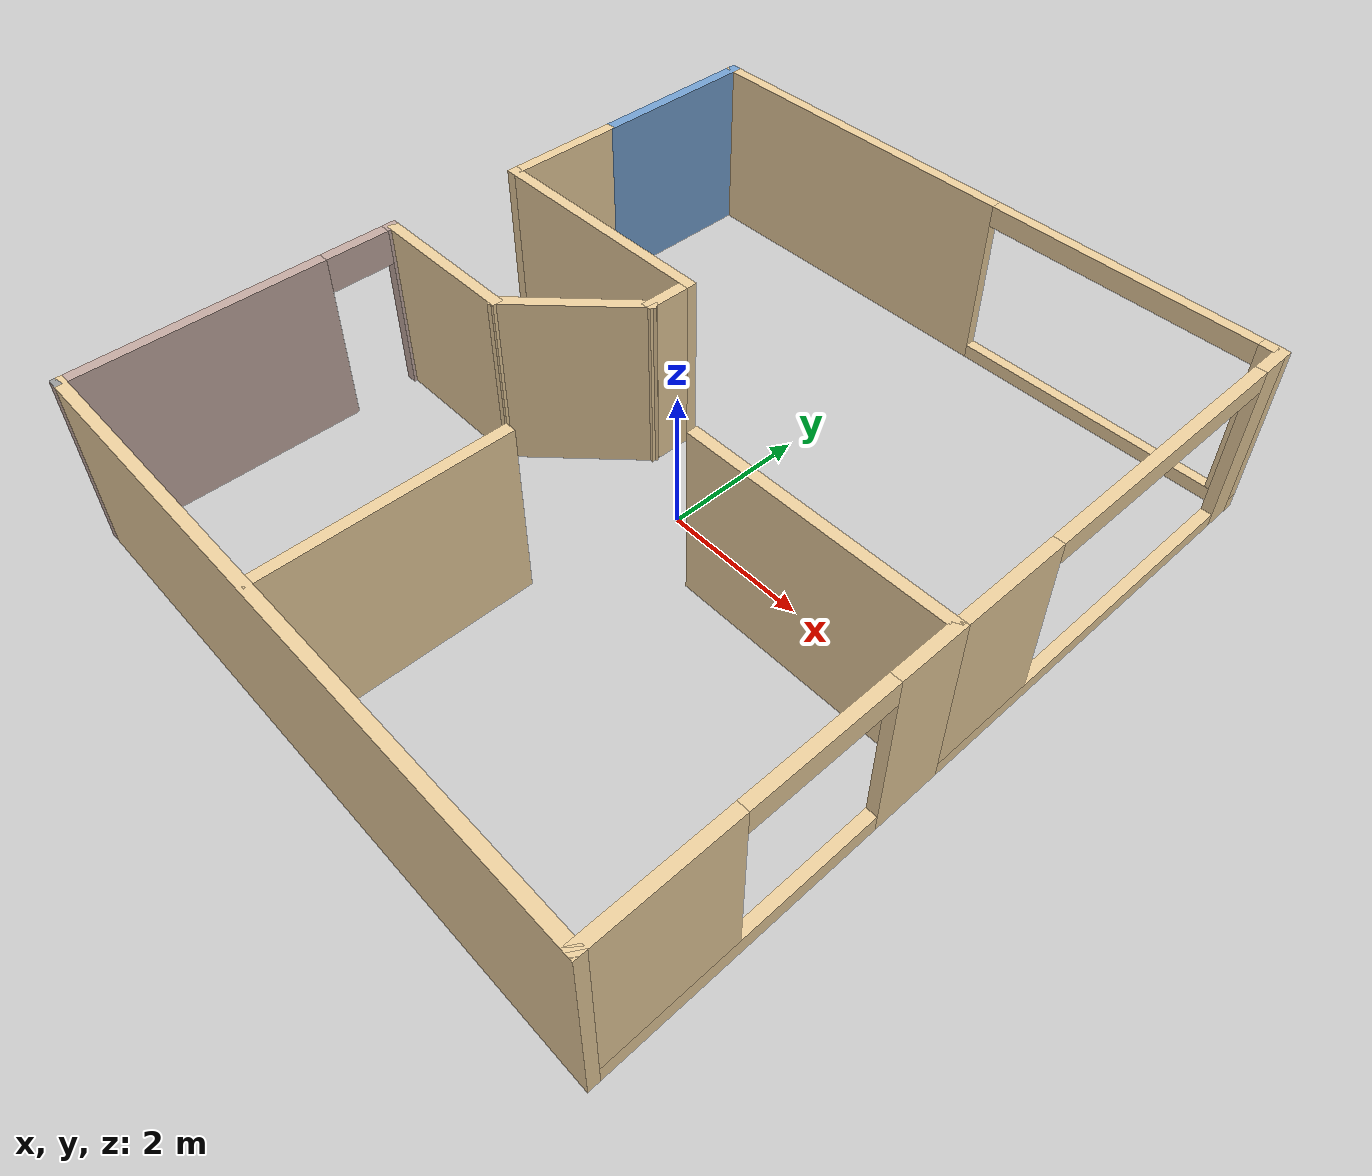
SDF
<?xml version='1.0'?>
<sdf version='1.6'>
  <model name='mybuidling'>
    <link name='Wall_0'>
      <pose frame=''>-3.40404 -0.771022 0 0 -0 0</pose>
      <self_collide>0</self_collide>
      <enable_wind>0</enable_wind>
      <kinematic>0</kinematic>
      <visual name='Wall_0_Visual'>
        <pose frame=''>0 0 1.25 0 -0 0</pose>
        <geometry>
          <box>
            <size>2.25 0.15 2.5</size>
          </box>
        </geometry>
        <material>
          <script>
            <uri>file://media/materials/scripts/gazebo.material</uri>
            <name>Gazebo/Grey</name>
          </script>
          <ambient>0.921569 0.807843 0.615686 1</ambient>
        </material>
        <meta>
          <layer>0</layer>
        </meta>
        <transparency>0</transparency>
        <cast_shadows>1</cast_shadows>
      </visual>
      <collision name='Wall_0_Collision'>
        <laser_retro>0</laser_retro>
        <max_contacts>10</max_contacts>
        <pose frame=''>0 0 1.25 0 -0 0</pose>
        <geometry>
          <box>
            <size>2.25 0.15 2.5</size>
          </box>
        </geometry>
        <surface>
          <friction>
            <ode>
              <mu>1</mu>
              <mu2>1</mu2>
              <fdir1>0 0 0</fdir1>
              <slip1>0</slip1>
              <slip2>0</slip2>
            </ode>
            <torsional>
              <coefficient>1</coefficient>
              <patch_radius>0</patch_radius>
              <surface_radius>0</surface_radius>
              <use_patch_radius>1</use_patch_radius>
              <ode>
                <slip>0</slip>
              </ode>
            </torsional>
          </friction>
          <bounce>
            <restitution_coefficient>0</restitution_coefficient>
            <threshold>1e+06</threshold>
          </bounce>
          <contact>
            <collide_without_contact>0</collide_without_contact>
            <collide_without_contact_bitmask>1</collide_without_contact_bitmask>
            <collide_bitmask>1</collide_bitmask>
            <ode>
              <soft_cfm>0</soft_cfm>
              <soft_erp>0.2</soft_erp>
              <kp>1e+13</kp>
              <kd>1</kd>
              <max_vel>0.01</max_vel>
              <min_depth>0</min_depth>
            </ode>
            <bullet>
              <split_impulse>1</split_impulse>
              <split_impulse_penetration_threshold>-0.01</split_impulse_penetration_threshold>
              <soft_cfm>0</soft_cfm>
              <soft_erp>0.2</soft_erp>
              <kp>1e+13</kp>
              <kd>1</kd>
            </bullet>
          </contact>
        </surface>
      </collision>
    </link>
    <link name='Wall_1'>
      <pose frame=''>-1.69996 -0.116948 0 0 -0 0.785398</pose>
      <self_collide>0</self_collide>
      <enable_wind>0</enable_wind>
      <kinematic>0</kinematic>
      <visual name='Wall_1_Visual'>
        <pose frame=''>0 0 1.25 0 -0 0</pose>
        <geometry>
          <box>
            <size>2 0.15 2.5</size>
          </box>
        </geometry>
        <material>
          <script>
            <uri>file://media/materials/scripts/gazebo.material</uri>
            <name>Gazebo/Grey</name>
          </script>
          <ambient>0.921569 0.807843 0.615686 1</ambient>
        </material>
        <meta>
          <layer>0</layer>
        </meta>
        <transparency>0</transparency>
        <cast_shadows>1</cast_shadows>
      </visual>
      <collision name='Wall_1_Collision'>
        <laser_retro>0</laser_retro>
        <max_contacts>10</max_contacts>
        <pose frame=''>0 0 1.25 0 -0 0</pose>
        <geometry>
          <box>
            <size>2 0.15 2.5</size>
          </box>
        </geometry>
        <surface>
          <friction>
            <ode>
              <mu>1</mu>
              <mu2>1</mu2>
              <fdir1>0 0 0</fdir1>
              <slip1>0</slip1>
              <slip2>0</slip2>
            </ode>
            <torsional>
              <coefficient>1</coefficient>
              <patch_radius>0</patch_radius>
              <surface_radius>0</surface_radius>
              <use_patch_radius>1</use_patch_radius>
              <ode>
                <slip>0</slip>
              </ode>
            </torsional>
          </friction>
          <bounce>
            <restitution_coefficient>0</restitution_coefficient>
            <threshold>1e+06</threshold>
          </bounce>
          <contact>
            <collide_without_contact>0</collide_without_contact>
            <collide_without_contact_bitmask>1</collide_without_contact_bitmask>
            <collide_bitmask>1</collide_bitmask>
            <ode>
              <soft_cfm>0</soft_cfm>
              <soft_erp>0.2</soft_erp>
              <kp>1e+13</kp>
              <kd>1</kd>
              <max_vel>0.01</max_vel>
              <min_depth>0</min_depth>
            </ode>
            <bullet>
              <split_impulse>1</split_impulse>
              <split_impulse_penetration_threshold>-0.01</split_impulse_penetration_threshold>
              <soft_cfm>0</soft_cfm>
              <soft_erp>0.2</soft_erp>
              <kp>1e+13</kp>
              <kd>1</kd>
            </bullet>
          </contact>
        </surface>
      </collision>
    </link>
    <link name='Wall_10'>
      <pose frame=''>4.45396 2.30298 0 0 0 -1.5708</pose>
      <self_collide>0</self_collide>
      <enable_wind>0</enable_wind>
      <kinematic>0</kinematic>
      <visual name='Wall_10_Visual_0'>
        <pose frame=''>-2.70027 0 1.25 0 -0 0</pose>
        <geometry>
          <box>
            <size>0.517468 0.15 2.5</size>
          </box>
        </geometry>
        <material>
          <script>
            <uri>file://media/materials/scripts/gazebo.material</uri>
            <name>Gazebo/Grey</name>
          </script>
          <ambient>0.921569 0.807843 0.615686 1</ambient>
        </material>
        <meta>
          <layer>0</layer>
        </meta>
        <transparency>0</transparency>
        <cast_shadows>1</cast_shadows>
      </visual>
      <visual name='Wall_10_Visual_2'>
        <pose frame=''>2.14373 0 1.35 0 -0 0</pose>
        <geometry>
          <box>
            <size>1.63053 0.15 2.3</size>
          </box>
        </geometry>
        <material>
          <script>
            <uri>file://media/materials/scripts/gazebo.material</uri>
            <name>Gazebo/Grey</name>
          </script>
          <ambient>0.921569 0.807843 0.615686 1</ambient>
        </material>
        <meta>
          <layer>0</layer>
        </meta>
        <transparency>0</transparency>
        <cast_shadows>1</cast_shadows>
      </visual>
      <visual name='Wall_10_Visual_1'>
        <pose frame=''>0.258734 0 0.1 0 -0 0</pose>
        <geometry>
          <box>
            <size>5.40053 0.15 0.2</size>
          </box>
        </geometry>
        <material>
          <script>
            <uri>file://media/materials/scripts/gazebo.material</uri>
            <name>Gazebo/Grey</name>
          </script>
          <ambient>0.921569 0.807843 0.615686 1</ambient>
        </material>
        <meta>
          <layer>0</layer>
        </meta>
        <transparency>0</transparency>
        <cast_shadows>1</cast_shadows>
      </visual>
      <visual name='Wall_10_Visual_3'>
        <pose frame=''>-0.556532 0 2.35 0 -0 0</pose>
        <geometry>
          <box>
            <size>3.77 0.15 0.3</size>
          </box>
        </geometry>
        <material>
          <script>
            <uri>file://media/materials/scripts/gazebo.material</uri>
            <name>Gazebo/Grey</name>
          </script>
          <ambient>0.921569 0.807843 0.615686 1</ambient>
        </material>
        <meta>
          <layer>0</layer>
        </meta>
        <transparency>0</transparency>
        <cast_shadows>1</cast_shadows>
      </visual>
      <collision name='Wall_10_Collision_3'>
        <laser_retro>0</laser_retro>
        <max_contacts>10</max_contacts>
        <pose frame=''>-0.556532 0 2.35 0 -0 0</pose>
        <geometry>
          <box>
            <size>3.77 0.15 0.3</size>
          </box>
        </geometry>
        <surface>
          <friction>
            <ode>
              <mu>1</mu>
              <mu2>1</mu2>
              <fdir1>0 0 0</fdir1>
              <slip1>0</slip1>
              <slip2>0</slip2>
            </ode>
            <torsional>
              <coefficient>1</coefficient>
              <patch_radius>0</patch_radius>
              <surface_radius>0</surface_radius>
              <use_patch_radius>1</use_patch_radius>
              <ode>
                <slip>0</slip>
              </ode>
            </torsional>
          </friction>
          <bounce>
            <restitution_coefficient>0</restitution_coefficient>
            <threshold>1e+06</threshold>
          </bounce>
          <contact>
            <collide_without_contact>0</collide_without_contact>
            <collide_without_contact_bitmask>1</collide_without_contact_bitmask>
            <collide_bitmask>1</collide_bitmask>
            <ode>
              <soft_cfm>0</soft_cfm>
              <soft_erp>0.2</soft_erp>
              <kp>1e+13</kp>
              <kd>1</kd>
              <max_vel>0.01</max_vel>
              <min_depth>0</min_depth>
            </ode>
            <bullet>
              <split_impulse>1</split_impulse>
              <split_impulse_penetration_threshold>-0.01</split_impulse_penetration_threshold>
              <soft_cfm>0</soft_cfm>
              <soft_erp>0.2</soft_erp>
              <kp>1e+13</kp>
              <kd>1</kd>
            </bullet>
          </contact>
        </surface>
      </collision>
      <collision name='Wall_10_Collision_2'>
        <laser_retro>0</laser_retro>
        <max_contacts>10</max_contacts>
        <pose frame=''>2.14373 0 1.35 0 -0 0</pose>
        <geometry>
          <box>
            <size>1.63053 0.15 2.3</size>
          </box>
        </geometry>
        <surface>
          <friction>
            <ode>
              <mu>1</mu>
              <mu2>1</mu2>
              <fdir1>0 0 0</fdir1>
              <slip1>0</slip1>
              <slip2>0</slip2>
            </ode>
            <torsional>
              <coefficient>1</coefficient>
              <patch_radius>0</patch_radius>
              <surface_radius>0</surface_radius>
              <use_patch_radius>1</use_patch_radius>
              <ode>
                <slip>0</slip>
              </ode>
            </torsional>
          </friction>
          <bounce>
            <restitution_coefficient>0</restitution_coefficient>
            <threshold>1e+06</threshold>
          </bounce>
          <contact>
            <collide_without_contact>0</collide_without_contact>
            <collide_without_contact_bitmask>1</collide_without_contact_bitmask>
            <collide_bitmask>1</collide_bitmask>
            <ode>
              <soft_cfm>0</soft_cfm>
              <soft_erp>0.2</soft_erp>
              <kp>1e+13</kp>
              <kd>1</kd>
              <max_vel>0.01</max_vel>
              <min_depth>0</min_depth>
            </ode>
            <bullet>
              <split_impulse>1</split_impulse>
              <split_impulse_penetration_threshold>-0.01</split_impulse_penetration_threshold>
              <soft_cfm>0</soft_cfm>
              <soft_erp>0.2</soft_erp>
              <kp>1e+13</kp>
              <kd>1</kd>
            </bullet>
          </contact>
        </surface>
      </collision>
      <collision name='Wall_10_Collision_1'>
        <laser_retro>0</laser_retro>
        <max_contacts>10</max_contacts>
        <pose frame=''>0.258734 0 0.1 0 -0 0</pose>
        <geometry>
          <box>
            <size>5.40053 0.15 0.2</size>
          </box>
        </geometry>
        <surface>
          <friction>
            <ode>
              <mu>1</mu>
              <mu2>1</mu2>
              <fdir1>0 0 0</fdir1>
              <slip1>0</slip1>
              <slip2>0</slip2>
            </ode>
            <torsional>
              <coefficient>1</coefficient>
              <patch_radius>0</patch_radius>
              <surface_radius>0</surface_radius>
              <use_patch_radius>1</use_patch_radius>
              <ode>
                <slip>0</slip>
              </ode>
            </torsional>
          </friction>
          <bounce>
            <restitution_coefficient>0</restitution_coefficient>
            <threshold>1e+06</threshold>
          </bounce>
          <contact>
            <collide_without_contact>0</collide_without_contact>
            <collide_without_contact_bitmask>1</collide_without_contact_bitmask>
            <collide_bitmask>1</collide_bitmask>
            <ode>
              <soft_cfm>0</soft_cfm>
              <soft_erp>0.2</soft_erp>
              <kp>1e+13</kp>
              <kd>1</kd>
              <max_vel>0.01</max_vel>
              <min_depth>0</min_depth>
            </ode>
            <bullet>
              <split_impulse>1</split_impulse>
              <split_impulse_penetration_threshold>-0.01</split_impulse_penetration_threshold>
              <soft_cfm>0</soft_cfm>
              <soft_erp>0.2</soft_erp>
              <kp>1e+13</kp>
              <kd>1</kd>
            </bullet>
          </contact>
        </surface>
      </collision>
      <collision name='Wall_10_Collision_0'>
        <laser_retro>0</laser_retro>
        <max_contacts>10</max_contacts>
        <pose frame=''>-2.70027 0 1.25 0 -0 0</pose>
        <geometry>
          <box>
            <size>0.517468 0.15 2.5</size>
          </box>
        </geometry>
        <surface>
          <friction>
            <ode>
              <mu>1</mu>
              <mu2>1</mu2>
              <fdir1>0 0 0</fdir1>
              <slip1>0</slip1>
              <slip2>0</slip2>
            </ode>
            <torsional>
              <coefficient>1</coefficient>
              <patch_radius>0</patch_radius>
              <surface_radius>0</surface_radius>
              <use_patch_radius>1</use_patch_radius>
              <ode>
                <slip>0</slip>
              </ode>
            </torsional>
          </friction>
          <bounce>
            <restitution_coefficient>0</restitution_coefficient>
            <threshold>1e+06</threshold>
          </bounce>
          <contact>
            <collide_without_contact>0</collide_without_contact>
            <collide_without_contact_bitmask>1</collide_without_contact_bitmask>
            <collide_bitmask>1</collide_bitmask>
            <ode>
              <soft_cfm>0</soft_cfm>
              <soft_erp>0.2</soft_erp>
              <kp>1e+13</kp>
              <kd>1</kd>
              <max_vel>0.01</max_vel>
              <min_depth>0</min_depth>
            </ode>
            <bullet>
              <split_impulse>1</split_impulse>
              <split_impulse_penetration_threshold>-0.01</split_impulse_penetration_threshold>
              <soft_cfm>0</soft_cfm>
              <soft_erp>0.2</soft_erp>
              <kp>1e+13</kp>
              <kd>1</kd>
            </bullet>
          </contact>
        </surface>
      </collision>
    </link>
    <link name='Wall_15'>
      <pose frame=''>2.69246 -0.581022 0 0 -0 0</pose>
      <self_collide>0</self_collide>
      <enable_wind>0</enable_wind>
      <kinematic>0</kinematic>
      <visual name='Wall_15_Visual'>
        <pose frame=''>0 0 1.25 0 -0 0</pose>
        <geometry>
          <box>
            <size>3.67257 0.15 2.5</size>
          </box>
        </geometry>
        <material>
          <script>
            <uri>file://media/materials/scripts/gazebo.material</uri>
            <name>Gazebo/Grey</name>
          </script>
          <ambient>0.921569 0.807843 0.615686 1</ambient>
        </material>
        <meta>
          <layer>0</layer>
        </meta>
        <transparency>0</transparency>
        <cast_shadows>1</cast_shadows>
      </visual>
      <collision name='Wall_15_Collision'>
        <laser_retro>0</laser_retro>
        <max_contacts>10</max_contacts>
        <pose frame=''>0 0 1.25 0 -0 0</pose>
        <geometry>
          <box>
            <size>3.67257 0.15 2.5</size>
          </box>
        </geometry>
        <surface>
          <friction>
            <ode>
              <mu>1</mu>
              <mu2>1</mu2>
              <fdir1>0 0 0</fdir1>
              <slip1>0</slip1>
              <slip2>0</slip2>
            </ode>
            <torsional>
              <coefficient>1</coefficient>
              <patch_radius>0</patch_radius>
              <surface_radius>0</surface_radius>
              <use_patch_radius>1</use_patch_radius>
              <ode>
                <slip>0</slip>
              </ode>
            </torsional>
          </friction>
          <bounce>
            <restitution_coefficient>0</restitution_coefficient>
            <threshold>1e+06</threshold>
          </bounce>
          <contact>
            <collide_without_contact>0</collide_without_contact>
            <collide_without_contact_bitmask>1</collide_without_contact_bitmask>
            <collide_bitmask>1</collide_bitmask>
            <ode>
              <soft_cfm>0</soft_cfm>
              <soft_erp>0.2</soft_erp>
              <kp>1e+13</kp>
              <kd>1</kd>
              <max_vel>0.01</max_vel>
              <min_depth>0</min_depth>
            </ode>
            <bullet>
              <split_impulse>1</split_impulse>
              <split_impulse_penetration_threshold>-0.01</split_impulse_penetration_threshold>
              <soft_cfm>0</soft_cfm>
              <soft_erp>0.2</soft_erp>
              <kp>1e+13</kp>
              <kd>1</kd>
            </bullet>
          </contact>
        </surface>
      </collision>
    </link>
    <link name='Wall_16'>
      <pose frame=''>4.45396 -2.88402 0 0 0 -1.5708</pose>
      <self_collide>0</self_collide>
      <enable_wind>0</enable_wind>
      <kinematic>0</kinematic>
      <visual name='Wall_16_Visual_1'>
        <pose frame=''>0.475716 0 0.125 0 -0 0</pose>
        <geometry>
          <box>
            <size>3.80457 0.15 0.25</size>
          </box>
        </geometry>
        <material>
          <script>
            <uri>file://media/materials/scripts/gazebo.material</uri>
            <name>Gazebo/Grey</name>
          </script>
          <ambient>0.921569 0.807843 0.615686 1</ambient>
        </material>
        <meta>
          <layer>0</layer>
        </meta>
        <transparency>0</transparency>
        <cast_shadows>1</cast_shadows>
      </visual>
      <visual name='Wall_16_Visual_0'>
        <pose frame=''>-1.90228 0 1.25 0 -0 0</pose>
        <geometry>
          <box>
            <size>0.951432 0.15 2.5</size>
          </box>
        </geometry>
        <material>
          <script>
            <uri>file://media/materials/scripts/gazebo.material</uri>
            <name>Gazebo/Grey</name>
          </script>
          <ambient>0.921569 0.807843 0.615686 1</ambient>
        </material>
        <meta>
          <layer>0</layer>
        </meta>
        <transparency>0</transparency>
        <cast_shadows>1</cast_shadows>
      </visual>
      <visual name='Wall_16_Visual_3'>
        <pose frame=''>-0.46625 0 2.325 0 -0 0</pose>
        <geometry>
          <box>
            <size>1.92064 0.15 0.35</size>
          </box>
        </geometry>
        <material>
          <script>
            <uri>file://media/materials/scripts/gazebo.material</uri>
            <name>Gazebo/Grey</name>
          </script>
          <ambient>0.921569 0.807843 0.615686 1</ambient>
        </material>
        <meta>
          <layer>0</layer>
        </meta>
        <transparency>0</transparency>
        <cast_shadows>1</cast_shadows>
      </visual>
      <visual name='Wall_16_Visual_2'>
        <pose frame=''>1.43603 0 1.375 0 -0 0</pose>
        <geometry>
          <box>
            <size>1.88393 0.15 2.25</size>
          </box>
        </geometry>
        <material>
          <script>
            <uri>file://media/materials/scripts/gazebo.material</uri>
            <name>Gazebo/Grey</name>
          </script>
          <ambient>0.921569 0.807843 0.615686 1</ambient>
        </material>
        <meta>
          <layer>0</layer>
        </meta>
        <transparency>0</transparency>
        <cast_shadows>1</cast_shadows>
      </visual>
      <collision name='Wall_16_Collision_2'>
        <laser_retro>0</laser_retro>
        <max_contacts>10</max_contacts>
        <pose frame=''>1.43603 0 1.375 0 -0 0</pose>
        <geometry>
          <box>
            <size>1.88393 0.15 2.25</size>
          </box>
        </geometry>
        <surface>
          <friction>
            <ode>
              <mu>1</mu>
              <mu2>1</mu2>
              <fdir1>0 0 0</fdir1>
              <slip1>0</slip1>
              <slip2>0</slip2>
            </ode>
            <torsional>
              <coefficient>1</coefficient>
              <patch_radius>0</patch_radius>
              <surface_radius>0</surface_radius>
              <use_patch_radius>1</use_patch_radius>
              <ode>
                <slip>0</slip>
              </ode>
            </torsional>
          </friction>
          <bounce>
            <restitution_coefficient>0</restitution_coefficient>
            <threshold>1e+06</threshold>
          </bounce>
          <contact>
            <collide_without_contact>0</collide_without_contact>
            <collide_without_contact_bitmask>1</collide_without_contact_bitmask>
            <collide_bitmask>1</collide_bitmask>
            <ode>
              <soft_cfm>0</soft_cfm>
              <soft_erp>0.2</soft_erp>
              <kp>1e+13</kp>
              <kd>1</kd>
              <max_vel>0.01</max_vel>
              <min_depth>0</min_depth>
            </ode>
            <bullet>
              <split_impulse>1</split_impulse>
              <split_impulse_penetration_threshold>-0.01</split_impulse_penetration_threshold>
              <soft_cfm>0</soft_cfm>
              <soft_erp>0.2</soft_erp>
              <kp>1e+13</kp>
              <kd>1</kd>
            </bullet>
          </contact>
        </surface>
      </collision>
      <collision name='Wall_16_Collision_0'>
        <laser_retro>0</laser_retro>
        <max_contacts>10</max_contacts>
        <pose frame=''>-1.90228 0 1.25 0 -0 0</pose>
        <geometry>
          <box>
            <size>0.951432 0.15 2.5</size>
          </box>
        </geometry>
        <surface>
          <friction>
            <ode>
              <mu>1</mu>
              <mu2>1</mu2>
              <fdir1>0 0 0</fdir1>
              <slip1>0</slip1>
              <slip2>0</slip2>
            </ode>
            <torsional>
              <coefficient>1</coefficient>
              <patch_radius>0</patch_radius>
              <surface_radius>0</surface_radius>
              <use_patch_radius>1</use_patch_radius>
              <ode>
                <slip>0</slip>
              </ode>
            </torsional>
          </friction>
          <bounce>
            <restitution_coefficient>0</restitution_coefficient>
            <threshold>1e+06</threshold>
          </bounce>
          <contact>
            <collide_without_contact>0</collide_without_contact>
            <collide_without_contact_bitmask>1</collide_without_contact_bitmask>
            <collide_bitmask>1</collide_bitmask>
            <ode>
              <soft_cfm>0</soft_cfm>
              <soft_erp>0.2</soft_erp>
              <kp>1e+13</kp>
              <kd>1</kd>
              <max_vel>0.01</max_vel>
              <min_depth>0</min_depth>
            </ode>
            <bullet>
              <split_impulse>1</split_impulse>
              <split_impulse_penetration_threshold>-0.01</split_impulse_penetration_threshold>
              <soft_cfm>0</soft_cfm>
              <soft_erp>0.2</soft_erp>
              <kp>1e+13</kp>
              <kd>1</kd>
            </bullet>
          </contact>
        </surface>
      </collision>
      <collision name='Wall_16_Collision_3'>
        <laser_retro>0</laser_retro>
        <max_contacts>10</max_contacts>
        <pose frame=''>-0.46625 0 2.325 0 -0 0</pose>
        <geometry>
          <box>
            <size>1.92064 0.15 0.35</size>
          </box>
        </geometry>
        <surface>
          <friction>
            <ode>
              <mu>1</mu>
              <mu2>1</mu2>
              <fdir1>0 0 0</fdir1>
              <slip1>0</slip1>
              <slip2>0</slip2>
            </ode>
            <torsional>
              <coefficient>1</coefficient>
              <patch_radius>0</patch_radius>
              <surface_radius>0</surface_radius>
              <use_patch_radius>1</use_patch_radius>
              <ode>
                <slip>0</slip>
              </ode>
            </torsional>
          </friction>
          <bounce>
            <restitution_coefficient>0</restitution_coefficient>
            <threshold>1e+06</threshold>
          </bounce>
          <contact>
            <collide_without_contact>0</collide_without_contact>
            <collide_without_contact_bitmask>1</collide_without_contact_bitmask>
            <collide_bitmask>1</collide_bitmask>
            <ode>
              <soft_cfm>0</soft_cfm>
              <soft_erp>0.2</soft_erp>
              <kp>1e+13</kp>
              <kd>1</kd>
              <max_vel>0.01</max_vel>
              <min_depth>0</min_depth>
            </ode>
            <bullet>
              <split_impulse>1</split_impulse>
              <split_impulse_penetration_threshold>-0.01</split_impulse_penetration_threshold>
              <soft_cfm>0</soft_cfm>
              <soft_erp>0.2</soft_erp>
              <kp>1e+13</kp>
              <kd>1</kd>
            </bullet>
          </contact>
        </surface>
      </collision>
      <collision name='Wall_16_Collision_1'>
        <laser_retro>0</laser_retro>
        <max_contacts>10</max_contacts>
        <pose frame=''>0.475716 0 0.125 0 -0 0</pose>
        <geometry>
          <box>
            <size>3.80457 0.15 0.25</size>
          </box>
        </geometry>
        <surface>
          <friction>
            <ode>
              <mu>1</mu>
              <mu2>1</mu2>
              <fdir1>0 0 0</fdir1>
              <slip1>0</slip1>
              <slip2>0</slip2>
            </ode>
            <torsional>
              <coefficient>1</coefficient>
              <patch_radius>0</patch_radius>
              <surface_radius>0</surface_radius>
              <use_patch_radius>1</use_patch_radius>
              <ode>
                <slip>0</slip>
              </ode>
            </torsional>
          </friction>
          <bounce>
            <restitution_coefficient>0</restitution_coefficient>
            <threshold>1e+06</threshold>
          </bounce>
          <contact>
            <collide_without_contact>0</collide_without_contact>
            <collide_without_contact_bitmask>1</collide_without_contact_bitmask>
            <collide_bitmask>1</collide_bitmask>
            <ode>
              <soft_cfm>0</soft_cfm>
              <soft_erp>0.2</soft_erp>
              <kp>1e+13</kp>
              <kd>1</kd>
              <max_vel>0.01</max_vel>
              <min_depth>0</min_depth>
            </ode>
            <bullet>
              <split_impulse>1</split_impulse>
              <split_impulse_penetration_threshold>-0.01</split_impulse_penetration_threshold>
              <soft_cfm>0</soft_cfm>
              <soft_erp>0.2</soft_erp>
              <kp>1e+13</kp>
              <kd>1</kd>
            </bullet>
          </contact>
        </surface>
      </collision>
    </link>
    <link name='Wall_17'>
      <pose frame=''>-3.7e-05 -5.18702 0 0 -0 3.14159</pose>
      <self_collide>0</self_collide>
      <enable_wind>0</enable_wind>
      <kinematic>0</kinematic>
      <visual name='Wall_17_Visual'>
        <pose frame=''>0 0 1.25 0 -0 0</pose>
        <geometry>
          <box>
            <size>9.058 0.15 2.5</size>
          </box>
        </geometry>
        <material>
          <script>
            <uri>file://media/materials/scripts/gazebo.material</uri>
            <name>Gazebo/Grey</name>
          </script>
          <ambient>0.921569 0.807843 0.615686 1</ambient>
        </material>
        <meta>
          <layer>0</layer>
        </meta>
        <transparency>0</transparency>
        <cast_shadows>1</cast_shadows>
      </visual>
      <collision name='Wall_17_Collision'>
        <laser_retro>0</laser_retro>
        <max_contacts>10</max_contacts>
        <pose frame=''>0 0 1.25 0 -0 0</pose>
        <geometry>
          <box>
            <size>9.058 0.15 2.5</size>
          </box>
        </geometry>
        <surface>
          <friction>
            <ode>
              <mu>1</mu>
              <mu2>1</mu2>
              <fdir1>0 0 0</fdir1>
              <slip1>0</slip1>
              <slip2>0</slip2>
            </ode>
            <torsional>
              <coefficient>1</coefficient>
              <patch_radius>0</patch_radius>
              <surface_radius>0</surface_radius>
              <use_patch_radius>1</use_patch_radius>
              <ode>
                <slip>0</slip>
              </ode>
            </torsional>
          </friction>
          <bounce>
            <restitution_coefficient>0</restitution_coefficient>
            <threshold>1e+06</threshold>
          </bounce>
          <contact>
            <collide_without_contact>0</collide_without_contact>
            <collide_without_contact_bitmask>1</collide_without_contact_bitmask>
            <collide_bitmask>1</collide_bitmask>
            <ode>
              <soft_cfm>0</soft_cfm>
              <soft_erp>0.2</soft_erp>
              <kp>1e+13</kp>
              <kd>1</kd>
              <max_vel>0.01</max_vel>
              <min_depth>0</min_depth>
            </ode>
            <bullet>
              <split_impulse>1</split_impulse>
              <split_impulse_penetration_threshold>-0.01</split_impulse_penetration_threshold>
              <soft_cfm>0</soft_cfm>
              <soft_erp>0.2</soft_erp>
              <kp>1e+13</kp>
              <kd>1</kd>
            </bullet>
          </contact>
        </surface>
      </collision>
    </link>
    <link name='Wall_2'>
      <pose frame=''>-1.04589 0.837126 0 0 -0 1.5708</pose>
      <self_collide>0</self_collide>
      <enable_wind>0</enable_wind>
      <kinematic>0</kinematic>
      <visual name='Wall_2_Visual'>
        <pose frame=''>0 0 1.25 0 -0 0</pose>
        <geometry>
          <box>
            <size>0.75 0.15 2.5</size>
          </box>
        </geometry>
        <material>
          <script>
            <uri>file://media/materials/scripts/gazebo.material</uri>
            <name>Gazebo/Grey</name>
          </script>
          <ambient>0.921569 0.807843 0.615686 1</ambient>
        </material>
        <meta>
          <layer>0</layer>
        </meta>
        <transparency>0</transparency>
        <cast_shadows>1</cast_shadows>
      </visual>
      <collision name='Wall_2_Collision'>
        <laser_retro>0</laser_retro>
        <max_contacts>10</max_contacts>
        <pose frame=''>0 0 1.25 0 -0 0</pose>
        <geometry>
          <box>
            <size>0.75 0.15 2.5</size>
          </box>
        </geometry>
        <surface>
          <friction>
            <ode>
              <mu>1</mu>
              <mu2>1</mu2>
              <fdir1>0 0 0</fdir1>
              <slip1>0</slip1>
              <slip2>0</slip2>
            </ode>
            <torsional>
              <coefficient>1</coefficient>
              <patch_radius>0</patch_radius>
              <surface_radius>0</surface_radius>
              <use_patch_radius>1</use_patch_radius>
              <ode>
                <slip>0</slip>
              </ode>
            </torsional>
          </friction>
          <bounce>
            <restitution_coefficient>0</restitution_coefficient>
            <threshold>1e+06</threshold>
          </bounce>
          <contact>
            <collide_without_contact>0</collide_without_contact>
            <collide_without_contact_bitmask>1</collide_without_contact_bitmask>
            <collide_bitmask>1</collide_bitmask>
            <ode>
              <soft_cfm>0</soft_cfm>
              <soft_erp>0.2</soft_erp>
              <kp>1e+13</kp>
              <kd>1</kd>
              <max_vel>0.01</max_vel>
              <min_depth>0</min_depth>
            </ode>
            <bullet>
              <split_impulse>1</split_impulse>
              <split_impulse_penetration_threshold>-0.01</split_impulse_penetration_threshold>
              <soft_cfm>0</soft_cfm>
              <soft_erp>0.2</soft_erp>
              <kp>1e+13</kp>
              <kd>1</kd>
            </bullet>
          </contact>
        </surface>
      </collision>
    </link>
    <link name='Wall_20'>
      <pose frame=''>-4.45404 -5.18702 0 0 -0 0</pose>
      <self_collide>0</self_collide>
      <enable_wind>0</enable_wind>
      <kinematic>0</kinematic>
      <visual name='Wall_20_Visual'>
        <pose frame=''>0 0 1.25 0 -0 0</pose>
        <geometry>
          <box>
            <size>0.15 0.15 2.5</size>
          </box>
        </geometry>
        <material>
          <script>
            <uri>file://media/materials/scripts/gazebo.material</uri>
            <name>Gazebo/Grey</name>
          </script>
          <ambient>1 1 1 1</ambient>
        </material>
        <meta>
          <layer>0</layer>
        </meta>
        <transparency>0</transparency>
        <cast_shadows>1</cast_shadows>
      </visual>
      <collision name='Wall_20_Collision'>
        <laser_retro>0</laser_retro>
        <max_contacts>10</max_contacts>
        <pose frame=''>0 0 1.25 0 -0 0</pose>
        <geometry>
          <box>
            <size>0.15 0.15 2.5</size>
          </box>
        </geometry>
        <surface>
          <friction>
            <ode>
              <mu>1</mu>
              <mu2>1</mu2>
              <fdir1>0 0 0</fdir1>
              <slip1>0</slip1>
              <slip2>0</slip2>
            </ode>
            <torsional>
              <coefficient>1</coefficient>
              <patch_radius>0</patch_radius>
              <surface_radius>0</surface_radius>
              <use_patch_radius>1</use_patch_radius>
              <ode>
                <slip>0</slip>
              </ode>
            </torsional>
          </friction>
          <bounce>
            <restitution_coefficient>0</restitution_coefficient>
            <threshold>1e+06</threshold>
          </bounce>
          <contact>
            <collide_without_contact>0</collide_without_contact>
            <collide_without_contact_bitmask>1</collide_without_contact_bitmask>
            <collide_bitmask>1</collide_bitmask>
            <ode>
              <soft_cfm>0</soft_cfm>
              <soft_erp>0.2</soft_erp>
              <kp>1e+13</kp>
              <kd>1</kd>
              <max_vel>0.01</max_vel>
              <min_depth>0</min_depth>
            </ode>
            <bullet>
              <split_impulse>1</split_impulse>
              <split_impulse_penetration_threshold>-0.01</split_impulse_penetration_threshold>
              <soft_cfm>0</soft_cfm>
              <soft_erp>0.2</soft_erp>
              <kp>1e+13</kp>
              <kd>1</kd>
            </bullet>
          </contact>
        </surface>
      </collision>
    </link>
    <link name='Wall_21'>
      <pose frame=''>-4.45404 -2.97902 0 0 -0 1.5708</pose>
      <self_collide>0</self_collide>
      <enable_wind>0</enable_wind>
      <kinematic>0</kinematic>
      <visual name='Wall_21_Visual_0'>
        <pose frame=''>-0.54676 0 1.25 0 -0 0</pose>
        <geometry>
          <box>
            <size>3.47269 0.15 2.5</size>
          </box>
        </geometry>
        <material>
          <script>
            <uri>file://media/materials/scripts/gazebo.material</uri>
            <name>Gazebo/Grey</name>
          </script>
          <ambient>0.760784 0.662745 0.627451 1</ambient>
        </material>
        <meta>
          <layer>0</layer>
        </meta>
        <transparency>0</transparency>
        <cast_shadows>1</cast_shadows>
      </visual>
      <visual name='Wall_21_Visual_1'>
        <pose frame=''>2.18635 0 1.25 0 -0 0</pose>
        <geometry>
          <box>
            <size>0.193521 0.15 2.5</size>
          </box>
        </geometry>
        <material>
          <script>
            <uri>file://media/materials/scripts/gazebo.material</uri>
            <name>Gazebo/Grey</name>
          </script>
          <ambient>0.760784 0.662745 0.627451 1</ambient>
        </material>
        <meta>
          <layer>0</layer>
        </meta>
        <transparency>0</transparency>
        <cast_shadows>1</cast_shadows>
      </visual>
      <visual name='Wall_21_Visual_2'>
        <pose frame=''>1.63959 0 2.25 0 -0 0</pose>
        <geometry>
          <box>
            <size>0.9 0.15 0.5</size>
          </box>
        </geometry>
        <material>
          <script>
            <uri>file://media/materials/scripts/gazebo.material</uri>
            <name>Gazebo/Grey</name>
          </script>
          <ambient>0.760784 0.662745 0.627451 1</ambient>
        </material>
        <meta>
          <layer>0</layer>
        </meta>
        <transparency>0</transparency>
        <cast_shadows>1</cast_shadows>
      </visual>
      <collision name='Wall_21_Collision_2'>
        <laser_retro>0</laser_retro>
        <max_contacts>10</max_contacts>
        <pose frame=''>1.63959 0 2.25 0 -0 0</pose>
        <geometry>
          <box>
            <size>0.9 0.15 0.5</size>
          </box>
        </geometry>
        <surface>
          <friction>
            <ode>
              <mu>1</mu>
              <mu2>1</mu2>
              <fdir1>0 0 0</fdir1>
              <slip1>0</slip1>
              <slip2>0</slip2>
            </ode>
            <torsional>
              <coefficient>1</coefficient>
              <patch_radius>0</patch_radius>
              <surface_radius>0</surface_radius>
              <use_patch_radius>1</use_patch_radius>
              <ode>
                <slip>0</slip>
              </ode>
            </torsional>
          </friction>
          <bounce>
            <restitution_coefficient>0</restitution_coefficient>
            <threshold>1e+06</threshold>
          </bounce>
          <contact>
            <collide_without_contact>0</collide_without_contact>
            <collide_without_contact_bitmask>1</collide_without_contact_bitmask>
            <collide_bitmask>1</collide_bitmask>
            <ode>
              <soft_cfm>0</soft_cfm>
              <soft_erp>0.2</soft_erp>
              <kp>1e+13</kp>
              <kd>1</kd>
              <max_vel>0.01</max_vel>
              <min_depth>0</min_depth>
            </ode>
            <bullet>
              <split_impulse>1</split_impulse>
              <split_impulse_penetration_threshold>-0.01</split_impulse_penetration_threshold>
              <soft_cfm>0</soft_cfm>
              <soft_erp>0.2</soft_erp>
              <kp>1e+13</kp>
              <kd>1</kd>
            </bullet>
          </contact>
        </surface>
      </collision>
      <collision name='Wall_21_Collision_0'>
        <laser_retro>0</laser_retro>
        <max_contacts>10</max_contacts>
        <pose frame=''>-0.54676 0 1.25 0 -0 0</pose>
        <geometry>
          <box>
            <size>3.47269 0.15 2.5</size>
          </box>
        </geometry>
        <surface>
          <friction>
            <ode>
              <mu>1</mu>
              <mu2>1</mu2>
              <fdir1>0 0 0</fdir1>
              <slip1>0</slip1>
              <slip2>0</slip2>
            </ode>
            <torsional>
              <coefficient>1</coefficient>
              <patch_radius>0</patch_radius>
              <surface_radius>0</surface_radius>
              <use_patch_radius>1</use_patch_radius>
              <ode>
                <slip>0</slip>
              </ode>
            </torsional>
          </friction>
          <bounce>
            <restitution_coefficient>0</restitution_coefficient>
            <threshold>1e+06</threshold>
          </bounce>
          <contact>
            <collide_without_contact>0</collide_without_contact>
            <collide_without_contact_bitmask>1</collide_without_contact_bitmask>
            <collide_bitmask>1</collide_bitmask>
            <ode>
              <soft_cfm>0</soft_cfm>
              <soft_erp>0.2</soft_erp>
              <kp>1e+13</kp>
              <kd>1</kd>
              <max_vel>0.01</max_vel>
              <min_depth>0</min_depth>
            </ode>
            <bullet>
              <split_impulse>1</split_impulse>
              <split_impulse_penetration_threshold>-0.01</split_impulse_penetration_threshold>
              <soft_cfm>0</soft_cfm>
              <soft_erp>0.2</soft_erp>
              <kp>1e+13</kp>
              <kd>1</kd>
            </bullet>
          </contact>
        </surface>
      </collision>
      <collision name='Wall_21_Collision_1'>
        <laser_retro>0</laser_retro>
        <max_contacts>10</max_contacts>
        <pose frame=''>2.18635 0 1.25 0 -0 0</pose>
        <geometry>
          <box>
            <size>0.193521 0.15 2.5</size>
          </box>
        </geometry>
        <surface>
          <friction>
            <ode>
              <mu>1</mu>
              <mu2>1</mu2>
              <fdir1>0 0 0</fdir1>
              <slip1>0</slip1>
              <slip2>0</slip2>
            </ode>
            <torsional>
              <coefficient>1</coefficient>
              <patch_radius>0</patch_radius>
              <surface_radius>0</surface_radius>
              <use_patch_radius>1</use_patch_radius>
              <ode>
                <slip>0</slip>
              </ode>
            </torsional>
          </friction>
          <bounce>
            <restitution_coefficient>0</restitution_coefficient>
            <threshold>1e+06</threshold>
          </bounce>
          <contact>
            <collide_without_contact>0</collide_without_contact>
            <collide_without_contact_bitmask>1</collide_without_contact_bitmask>
            <collide_bitmask>1</collide_bitmask>
            <ode>
              <soft_cfm>0</soft_cfm>
              <soft_erp>0.2</soft_erp>
              <kp>1e+13</kp>
              <kd>1</kd>
              <max_vel>0.01</max_vel>
              <min_depth>0</min_depth>
            </ode>
            <bullet>
              <split_impulse>1</split_impulse>
              <split_impulse_penetration_threshold>-0.01</split_impulse_penetration_threshold>
              <soft_cfm>0</soft_cfm>
              <soft_erp>0.2</soft_erp>
              <kp>1e+13</kp>
              <kd>1</kd>
            </bullet>
          </contact>
        </surface>
      </collision>
    </link>
    <link name='Wall_3'>
      <pose frame=''>-2.72089 1.13713 0 0 -0 3.14159</pose>
      <self_collide>0</self_collide>
      <enable_wind>0</enable_wind>
      <kinematic>0</kinematic>
      <visual name='Wall_3_Visual'>
        <pose frame=''>0 0 1.25 0 -0 0</pose>
        <geometry>
          <box>
            <size>3.5 0.15 2.5</size>
          </box>
        </geometry>
        <material>
          <script>
            <uri>file://media/materials/scripts/gazebo.material</uri>
            <name>Gazebo/Grey</name>
          </script>
          <ambient>0.921569 0.807843 0.615686 1</ambient>
        </material>
        <meta>
          <layer>0</layer>
        </meta>
        <transparency>0</transparency>
        <cast_shadows>1</cast_shadows>
      </visual>
      <collision name='Wall_3_Collision'>
        <laser_retro>0</laser_retro>
        <max_contacts>10</max_contacts>
        <pose frame=''>0 0 1.25 0 -0 0</pose>
        <geometry>
          <box>
            <size>3.5 0.15 2.5</size>
          </box>
        </geometry>
        <surface>
          <friction>
            <ode>
              <mu>1</mu>
              <mu2>1</mu2>
              <fdir1>0 0 0</fdir1>
              <slip1>0</slip1>
              <slip2>0</slip2>
            </ode>
            <torsional>
              <coefficient>1</coefficient>
              <patch_radius>0</patch_radius>
              <surface_radius>0</surface_radius>
              <use_patch_radius>1</use_patch_radius>
              <ode>
                <slip>0</slip>
              </ode>
            </torsional>
          </friction>
          <bounce>
            <restitution_coefficient>0</restitution_coefficient>
            <threshold>1e+06</threshold>
          </bounce>
          <contact>
            <collide_without_contact>0</collide_without_contact>
            <collide_without_contact_bitmask>1</collide_without_contact_bitmask>
            <collide_bitmask>1</collide_bitmask>
            <ode>
              <soft_cfm>0</soft_cfm>
              <soft_erp>0.2</soft_erp>
              <kp>1e+13</kp>
              <kd>1</kd>
              <max_vel>0.01</max_vel>
              <min_depth>0</min_depth>
            </ode>
            <bullet>
              <split_impulse>1</split_impulse>
              <split_impulse_penetration_threshold>-0.01</split_impulse_penetration_threshold>
              <soft_cfm>0</soft_cfm>
              <soft_erp>0.2</soft_erp>
              <kp>1e+13</kp>
              <kd>1</kd>
            </bullet>
          </contact>
        </surface>
      </collision>
    </link>
    <link name='Wall_32'>
      <pose frame=''>-0.482902 -3.59652 0 0 0 -1.5708</pose>
      <self_collide>0</self_collide>
      <enable_wind>0</enable_wind>
      <kinematic>0</kinematic>
      <visual name='Wall_32_Visual'>
        <pose frame=''>0 0 1.25 0 -0 0</pose>
        <geometry>
          <box>
            <size>3.25 0.15 2.5</size>
          </box>
        </geometry>
        <material>
          <script>
            <uri>file://media/materials/scripts/gazebo.material</uri>
            <name>Gazebo/Grey</name>
          </script>
          <ambient>0.921569 0.807843 0.615686 1</ambient>
        </material>
        <meta>
          <layer>0</layer>
        </meta>
        <transparency>0</transparency>
        <cast_shadows>1</cast_shadows>
      </visual>
      <collision name='Wall_32_Collision'>
        <laser_retro>0</laser_retro>
        <max_contacts>10</max_contacts>
        <pose frame=''>0 0 1.25 0 -0 0</pose>
        <geometry>
          <box>
            <size>3.25 0.15 2.5</size>
          </box>
        </geometry>
        <surface>
          <friction>
            <ode>
              <mu>1</mu>
              <mu2>1</mu2>
              <fdir1>0 0 0</fdir1>
              <slip1>0</slip1>
              <slip2>0</slip2>
            </ode>
            <torsional>
              <coefficient>1</coefficient>
              <patch_radius>0</patch_radius>
              <surface_radius>0</surface_radius>
              <use_patch_radius>1</use_patch_radius>
              <ode>
                <slip>0</slip>
              </ode>
            </torsional>
          </friction>
          <bounce>
            <restitution_coefficient>0</restitution_coefficient>
            <threshold>1e+06</threshold>
          </bounce>
          <contact>
            <collide_without_contact>0</collide_without_contact>
            <collide_without_contact_bitmask>1</collide_without_contact_bitmask>
            <collide_bitmask>1</collide_bitmask>
            <ode>
              <soft_cfm>0</soft_cfm>
              <soft_erp>0.2</soft_erp>
              <kp>1e+13</kp>
              <kd>1</kd>
              <max_vel>0.01</max_vel>
              <min_depth>0</min_depth>
            </ode>
            <bullet>
              <split_impulse>1</split_impulse>
              <split_impulse_penetration_threshold>-0.01</split_impulse_penetration_threshold>
              <soft_cfm>0</soft_cfm>
              <soft_erp>0.2</soft_erp>
              <kp>1e+13</kp>
              <kd>1</kd>
            </bullet>
          </contact>
        </surface>
      </collision>
    </link>
    <link name='Wall_4'>
      <pose frame=''>-4.39589 1.93713 0 0 -0 1.5708</pose>
      <self_collide>0</self_collide>
      <enable_wind>0</enable_wind>
      <kinematic>0</kinematic>
      <visual name='Wall_4_Visual'>
        <pose frame=''>0 0 1.25 0 -0 0</pose>
        <geometry>
          <box>
            <size>1.75 0.15 2.5</size>
          </box>
        </geometry>
        <material>
          <script>
            <uri>file://media/materials/scripts/gazebo.material</uri>
            <name>Gazebo/Grey</name>
          </script>
          <ambient>0.921569 0.807843 0.615686 1</ambient>
        </material>
        <meta>
          <layer>0</layer>
        </meta>
        <transparency>0</transparency>
        <cast_shadows>1</cast_shadows>
      </visual>
      <collision name='Wall_4_Collision'>
        <laser_retro>0</laser_retro>
        <max_contacts>10</max_contacts>
        <pose frame=''>0 0 1.25 0 -0 0</pose>
        <geometry>
          <box>
            <size>1.75 0.15 2.5</size>
          </box>
        </geometry>
        <surface>
          <friction>
            <ode>
              <mu>1</mu>
              <mu2>1</mu2>
              <fdir1>0 0 0</fdir1>
              <slip1>0</slip1>
              <slip2>0</slip2>
            </ode>
            <torsional>
              <coefficient>1</coefficient>
              <patch_radius>0</patch_radius>
              <surface_radius>0</surface_radius>
              <use_patch_radius>1</use_patch_radius>
              <ode>
                <slip>0</slip>
              </ode>
            </torsional>
          </friction>
          <bounce>
            <restitution_coefficient>0</restitution_coefficient>
            <threshold>1e+06</threshold>
          </bounce>
          <contact>
            <collide_without_contact>0</collide_without_contact>
            <collide_without_contact_bitmask>1</collide_without_contact_bitmask>
            <collide_bitmask>1</collide_bitmask>
            <ode>
              <soft_cfm>0</soft_cfm>
              <soft_erp>0.2</soft_erp>
              <kp>1e+13</kp>
              <kd>1</kd>
              <max_vel>0.01</max_vel>
              <min_depth>0</min_depth>
            </ode>
            <bullet>
              <split_impulse>1</split_impulse>
              <split_impulse_penetration_threshold>-0.01</split_impulse_penetration_threshold>
              <soft_cfm>0</soft_cfm>
              <soft_erp>0.2</soft_erp>
              <kp>1e+13</kp>
              <kd>1</kd>
            </bullet>
          </contact>
        </surface>
      </collision>
    </link>
    <link name='Wall_8'>
      <pose frame=''>-4.39589 4.01213 0 0 -0 1.5708</pose>
      <self_collide>0</self_collide>
      <enable_wind>0</enable_wind>
      <kinematic>0</kinematic>
      <visual name='Wall_8_Visual'>
        <pose frame=''>0 0 1.25 0 -0 0</pose>
        <geometry>
          <box>
            <size>2.5 0.15 2.5</size>
          </box>
        </geometry>
        <material>
          <script>
            <uri>file://media/materials/scripts/gazebo.material</uri>
            <name>Gazebo/Grey</name>
          </script>
          <ambient>0.447059 0.623529 0.811765 1</ambient>
        </material>
        <meta>
          <layer>0</layer>
        </meta>
        <transparency>0</transparency>
        <cast_shadows>1</cast_shadows>
      </visual>
      <collision name='Wall_8_Collision'>
        <laser_retro>0</laser_retro>
        <max_contacts>10</max_contacts>
        <pose frame=''>0 0 1.25 0 -0 0</pose>
        <geometry>
          <box>
            <size>2.5 0.15 2.5</size>
          </box>
        </geometry>
        <surface>
          <friction>
            <ode>
              <mu>1</mu>
              <mu2>1</mu2>
              <fdir1>0 0 0</fdir1>
              <slip1>0</slip1>
              <slip2>0</slip2>
            </ode>
            <torsional>
              <coefficient>1</coefficient>
              <patch_radius>0</patch_radius>
              <surface_radius>0</surface_radius>
              <use_patch_radius>1</use_patch_radius>
              <ode>
                <slip>0</slip>
              </ode>
            </torsional>
          </friction>
          <bounce>
            <restitution_coefficient>0</restitution_coefficient>
            <threshold>1e+06</threshold>
          </bounce>
          <contact>
            <collide_without_contact>0</collide_without_contact>
            <collide_without_contact_bitmask>1</collide_without_contact_bitmask>
            <collide_bitmask>1</collide_bitmask>
            <ode>
              <soft_cfm>0</soft_cfm>
              <soft_erp>0.2</soft_erp>
              <kp>1e+13</kp>
              <kd>1</kd>
              <max_vel>0.01</max_vel>
              <min_depth>0</min_depth>
            </ode>
            <bullet>
              <split_impulse>1</split_impulse>
              <split_impulse_penetration_threshold>-0.01</split_impulse_penetration_threshold>
              <soft_cfm>0</soft_cfm>
              <soft_erp>0.2</soft_erp>
              <kp>1e+13</kp>
              <kd>1</kd>
            </bullet>
          </contact>
        </surface>
      </collision>
    </link>
    <link name='Wall_9'>
      <pose frame=''>0.029036 5.18705 0 0 0 -1.7e-05</pose>
      <self_collide>0</self_collide>
      <enable_wind>0</enable_wind>
      <kinematic>0</kinematic>
      <visual name='Wall_9_Visual_0'>
        <pose frame=''>-2.04954 0 1.25 0 -0 0</pose>
        <geometry>
          <box>
            <size>4.90092 0.15 2.5</size>
          </box>
        </geometry>
        <material>
          <script>
            <uri>file://media/materials/scripts/gazebo.material</uri>
            <name>Gazebo/Grey</name>
          </script>
          <ambient>0.921569 0.807843 0.615686 1</ambient>
        </material>
        <meta>
          <layer>0</layer>
        </meta>
        <transparency>0</transparency>
        <cast_shadows>1</cast_shadows>
      </visual>
      <visual name='Wall_9_Visual_1'>
        <pose frame=''>2.45046 0 0.1 0 -0 0</pose>
        <geometry>
          <box>
            <size>4.09908 0.15 0.2</size>
          </box>
        </geometry>
        <material>
          <script>
            <uri>file://media/materials/scripts/gazebo.material</uri>
            <name>Gazebo/Grey</name>
          </script>
          <ambient>0.921569 0.807843 0.615686 1</ambient>
        </material>
        <meta>
          <layer>0</layer>
        </meta>
        <transparency>0</transparency>
        <cast_shadows>1</cast_shadows>
      </visual>
      <visual name='Wall_9_Visual_3'>
        <pose frame=''>2.28592 0 2.35 0 -0 0</pose>
        <geometry>
          <box>
            <size>3.77 0.15 0.3</size>
          </box>
        </geometry>
        <material>
          <script>
            <uri>file://media/materials/scripts/gazebo.material</uri>
            <name>Gazebo/Grey</name>
          </script>
          <ambient>0.921569 0.807843 0.615686 1</ambient>
        </material>
        <meta>
          <layer>0</layer>
        </meta>
        <transparency>0</transparency>
        <cast_shadows>1</cast_shadows>
      </visual>
      <visual name='Wall_9_Visual_2'>
        <pose frame=''>4.33546 0 1.35 0 -0 0</pose>
        <geometry>
          <box>
            <size>0.329083 0.15 2.3</size>
          </box>
        </geometry>
        <material>
          <script>
            <uri>file://media/materials/scripts/gazebo.material</uri>
            <name>Gazebo/Grey</name>
          </script>
          <ambient>0.921569 0.807843 0.615686 1</ambient>
        </material>
        <meta>
          <layer>0</layer>
        </meta>
        <transparency>0</transparency>
        <cast_shadows>1</cast_shadows>
      </visual>
      <collision name='Wall_9_Collision_3'>
        <laser_retro>0</laser_retro>
        <max_contacts>10</max_contacts>
        <pose frame=''>2.28592 0 2.35 0 -0 0</pose>
        <geometry>
          <box>
            <size>3.77 0.15 0.3</size>
          </box>
        </geometry>
        <surface>
          <friction>
            <ode>
              <mu>1</mu>
              <mu2>1</mu2>
              <fdir1>0 0 0</fdir1>
              <slip1>0</slip1>
              <slip2>0</slip2>
            </ode>
            <torsional>
              <coefficient>1</coefficient>
              <patch_radius>0</patch_radius>
              <surface_radius>0</surface_radius>
              <use_patch_radius>1</use_patch_radius>
              <ode>
                <slip>0</slip>
              </ode>
            </torsional>
          </friction>
          <bounce>
            <restitution_coefficient>0</restitution_coefficient>
            <threshold>1e+06</threshold>
          </bounce>
          <contact>
            <collide_without_contact>0</collide_without_contact>
            <collide_without_contact_bitmask>1</collide_without_contact_bitmask>
            <collide_bitmask>1</collide_bitmask>
            <ode>
              <soft_cfm>0</soft_cfm>
              <soft_erp>0.2</soft_erp>
              <kp>1e+13</kp>
              <kd>1</kd>
              <max_vel>0.01</max_vel>
              <min_depth>0</min_depth>
            </ode>
            <bullet>
              <split_impulse>1</split_impulse>
              <split_impulse_penetration_threshold>-0.01</split_impulse_penetration_threshold>
              <soft_cfm>0</soft_cfm>
              <soft_erp>0.2</soft_erp>
              <kp>1e+13</kp>
              <kd>1</kd>
            </bullet>
          </contact>
        </surface>
      </collision>
      <collision name='Wall_9_Collision_1'>
        <laser_retro>0</laser_retro>
        <max_contacts>10</max_contacts>
        <pose frame=''>2.45046 0 0.1 0 -0 0</pose>
        <geometry>
          <box>
            <size>4.09908 0.15 0.2</size>
          </box>
        </geometry>
        <surface>
          <friction>
            <ode>
              <mu>1</mu>
              <mu2>1</mu2>
              <fdir1>0 0 0</fdir1>
              <slip1>0</slip1>
              <slip2>0</slip2>
            </ode>
            <torsional>
              <coefficient>1</coefficient>
              <patch_radius>0</patch_radius>
              <surface_radius>0</surface_radius>
              <use_patch_radius>1</use_patch_radius>
              <ode>
                <slip>0</slip>
              </ode>
            </torsional>
          </friction>
          <bounce>
            <restitution_coefficient>0</restitution_coefficient>
            <threshold>1e+06</threshold>
          </bounce>
          <contact>
            <collide_without_contact>0</collide_without_contact>
            <collide_without_contact_bitmask>1</collide_without_contact_bitmask>
            <collide_bitmask>1</collide_bitmask>
            <ode>
              <soft_cfm>0</soft_cfm>
              <soft_erp>0.2</soft_erp>
              <kp>1e+13</kp>
              <kd>1</kd>
              <max_vel>0.01</max_vel>
              <min_depth>0</min_depth>
            </ode>
            <bullet>
              <split_impulse>1</split_impulse>
              <split_impulse_penetration_threshold>-0.01</split_impulse_penetration_threshold>
              <soft_cfm>0</soft_cfm>
              <soft_erp>0.2</soft_erp>
              <kp>1e+13</kp>
              <kd>1</kd>
            </bullet>
          </contact>
        </surface>
      </collision>
      <collision name='Wall_9_Collision_2'>
        <laser_retro>0</laser_retro>
        <max_contacts>10</max_contacts>
        <pose frame=''>4.33546 0 1.35 0 -0 0</pose>
        <geometry>
          <box>
            <size>0.329083 0.15 2.3</size>
          </box>
        </geometry>
        <surface>
          <friction>
            <ode>
              <mu>1</mu>
              <mu2>1</mu2>
              <fdir1>0 0 0</fdir1>
              <slip1>0</slip1>
              <slip2>0</slip2>
            </ode>
            <torsional>
              <coefficient>1</coefficient>
              <patch_radius>0</patch_radius>
              <surface_radius>0</surface_radius>
              <use_patch_radius>1</use_patch_radius>
              <ode>
                <slip>0</slip>
              </ode>
            </torsional>
          </friction>
          <bounce>
            <restitution_coefficient>0</restitution_coefficient>
            <threshold>1e+06</threshold>
          </bounce>
          <contact>
            <collide_without_contact>0</collide_without_contact>
            <collide_without_contact_bitmask>1</collide_without_contact_bitmask>
            <collide_bitmask>1</collide_bitmask>
            <ode>
              <soft_cfm>0</soft_cfm>
              <soft_erp>0.2</soft_erp>
              <kp>1e+13</kp>
              <kd>1</kd>
              <max_vel>0.01</max_vel>
              <min_depth>0</min_depth>
            </ode>
            <bullet>
              <split_impulse>1</split_impulse>
              <split_impulse_penetration_threshold>-0.01</split_impulse_penetration_threshold>
              <soft_cfm>0</soft_cfm>
              <soft_erp>0.2</soft_erp>
              <kp>1e+13</kp>
              <kd>1</kd>
            </bullet>
          </contact>
        </surface>
      </collision>
      <collision name='Wall_9_Collision_0'>
        <laser_retro>0</laser_retro>
        <max_contacts>10</max_contacts>
        <pose frame=''>-2.04954 0 1.25 0 -0 0</pose>
        <geometry>
          <box>
            <size>4.90092 0.15 2.5</size>
          </box>
        </geometry>
        <surface>
          <friction>
            <ode>
              <mu>1</mu>
              <mu2>1</mu2>
              <fdir1>0 0 0</fdir1>
              <slip1>0</slip1>
              <slip2>0</slip2>
            </ode>
            <torsional>
              <coefficient>1</coefficient>
              <patch_radius>0</patch_radius>
              <surface_radius>0</surface_radius>
              <use_patch_radius>1</use_patch_radius>
              <ode>
                <slip>0</slip>
              </ode>
            </torsional>
          </friction>
          <bounce>
            <restitution_coefficient>0</restitution_coefficient>
            <threshold>1e+06</threshold>
          </bounce>
          <contact>
            <collide_without_contact>0</collide_without_contact>
            <collide_without_contact_bitmask>1</collide_without_contact_bitmask>
            <collide_bitmask>1</collide_bitmask>
            <ode>
              <soft_cfm>0</soft_cfm>
              <soft_erp>0.2</soft_erp>
              <kp>1e+13</kp>
              <kd>1</kd>
              <max_vel>0.01</max_vel>
              <min_depth>0</min_depth>
            </ode>
            <bullet>
              <split_impulse>1</split_impulse>
              <split_impulse_penetration_threshold>-0.01</split_impulse_penetration_threshold>
              <soft_cfm>0</soft_cfm>
              <soft_erp>0.2</soft_erp>
              <kp>1e+13</kp>
              <kd>1</kd>
            </bullet>
          </contact>
        </surface>
      </collision>
    </link>
    <static>1</static>
    <allow_auto_disable>1</allow_auto_disable>
  </model>
</sdf>
